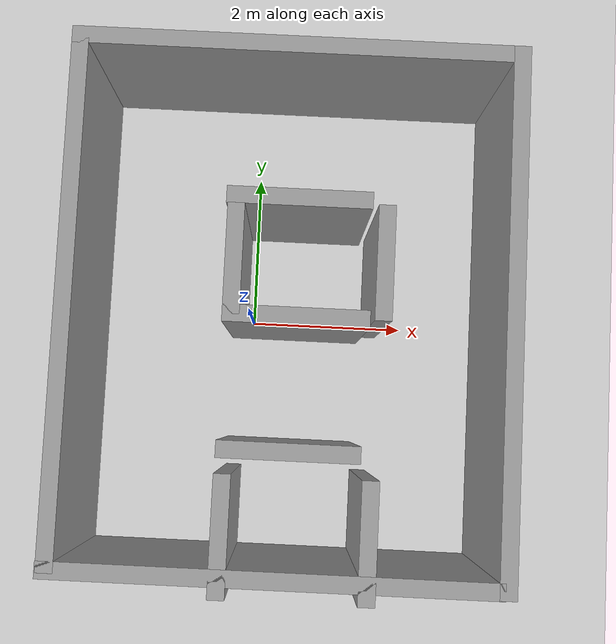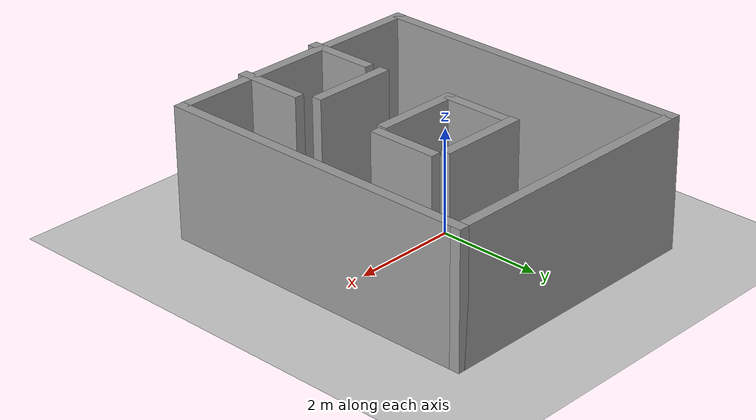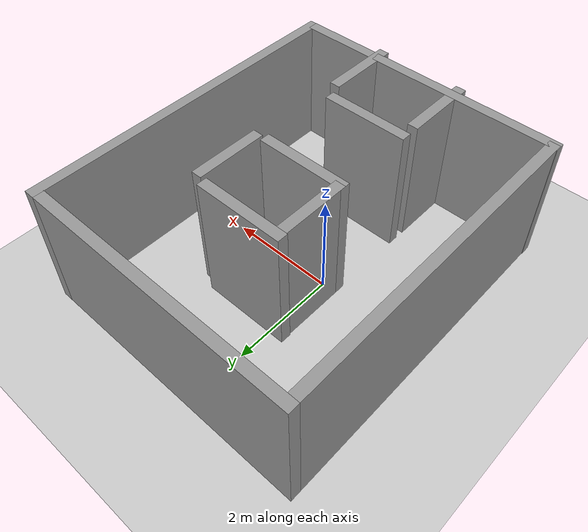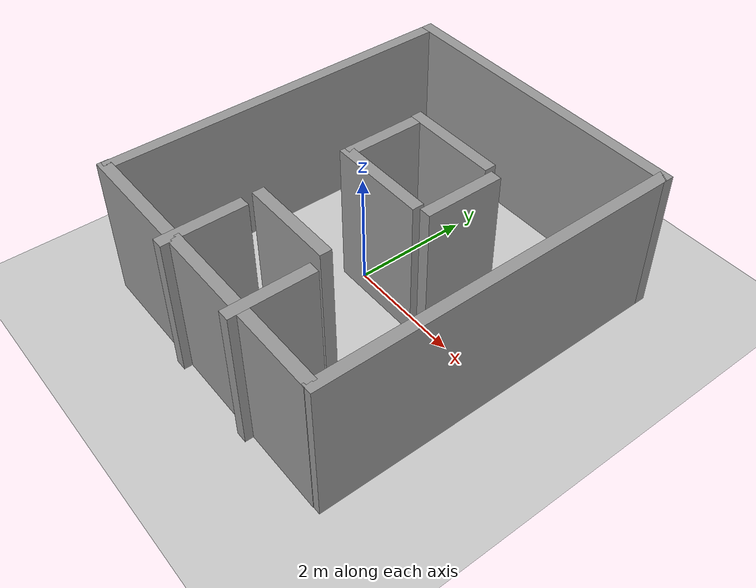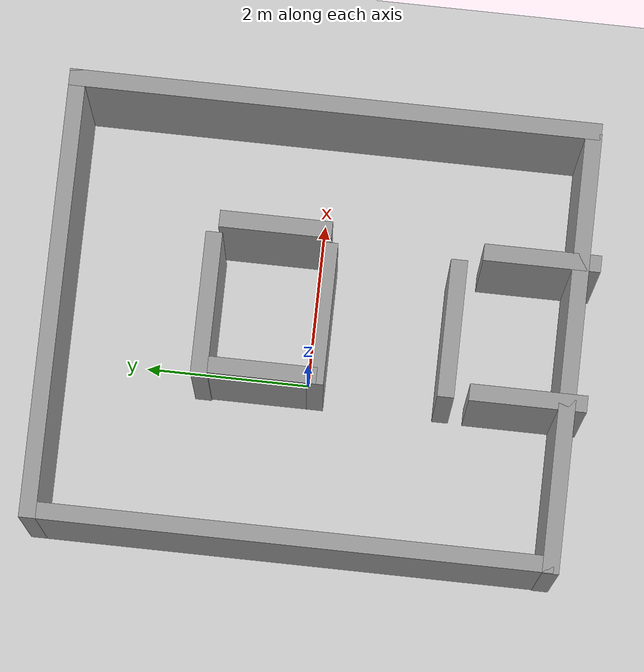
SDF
<sdf version="1.4">
 <world name="default">
  <include><uri>model://sun</uri></include>
  <include><uri>model://ground_plane</uri></include>
  <model name="real_world_map">
   <link name="Wall_1">
    <collision name="Wall_1_Collision">
     <geometry><box><size>5.26 0.2 2.5</size></box></geometry>
     <pose>0 0 1.25 0 -0 0</pose>
    </collision>
    <visual name="Wall_1_Visual">
     <pose>0 0 1.25 0 -0 0</pose>
     <geometry><box><size>5.26 0.2 2.5</size></box></geometry>
     <material>
      <script><uri>file://media/materials/scripts/gazebo.material</uri><name>Gazebo/Grey</name></script>
     </material>
    </visual>
    <velocity_decay><linear>0</linear><angular>0</angular></velocity_decay>
    <pose>0.412843 -3.08389 0 0 -0 0</pose>
   </link>
   <link name="Wall_10">
    <collision name="Wall_10_Collision">
     <geometry><box><size>1.39446 0.2 2.5</size></box></geometry>
     <pose>0 0 1.25 0 -0 0</pose>
    </collision>
    <visual name="Wall_10_Visual">
     <pose>0 0 1.25 0 -0 0</pose>
     <geometry><box><size>1.39446 0.2 2.5</size></box></geometry>
     <material>
      <script><uri>file://media/materials/scripts/gazebo.material</uri><name>Gazebo/Grey</name></script>
     </material>
    </visual>
    <velocity_decay><linear>0</linear><angular>0</angular></velocity_decay>
    <pose>-0.182814 -2.62455 0 0 0 -1.5708</pose>
   </link>
   <link name="Wall_12">
    <collision name="Wall_12_Collision">
     <geometry><box><size>1.28952 0.2 2.5</size></box></geometry>
     <pose>0 0 1.25 0 -0 0</pose>
    </collision>
    <visual name="Wall_12_Visual">
     <pose>0 0 1.25 0 -0 0</pose>
     <geometry><box><size>1.28952 0.2 2.5</size></box></geometry>
     <material>
      <script><uri>file://media/materials/scripts/gazebo.material</uri><name>Gazebo/Grey</name></script>
     </material>
    </visual>
    <velocity_decay><linear>0</linear><angular>0</angular></velocity_decay>
    <pose>-0.182814 0.526732 0 0 0 -1.5708</pose>
   </link>
   <link name="Wall_13">
    <collision name="Wall_13_Collision">
     <geometry><box><size>1.69693 0.2 2.5</size></box></geometry>
     <pose>0 0 1.25 0 -0 0</pose>
    </collision>
    <visual name="Wall_13_Visual">
     <pose>0 0 1.25 0 -0 0</pose>
     <geometry><box><size>1.69693 0.2 2.5</size></box></geometry>
     <material>
      <script><uri>file://media/materials/scripts/gazebo.material</uri><name>Gazebo/Grey</name></script>
     </material>
    </visual>
    <velocity_decay><linear>0</linear><angular>0</angular></velocity_decay>
    <pose>0.565553 -0.10697 0 0 -0 0</pose>
   </link>
   <link name="Wall_14">
    <collision name="Wall_14_Collision">
     <geometry><box><size>1.34199 0.2 2.5</size></box></geometry>
     <pose>0 0 1.25 0 -0 0</pose>
    </collision>
    <visual name="Wall_14_Visual">
     <pose>0 0 1.25 0 -0 0</pose>
     <geometry><box><size>1.34199 0.2 2.5</size></box></geometry>
     <material>
      <script><uri>file://media/materials/scripts/gazebo.material</uri><name>Gazebo/Grey</name></script>
     </material>
    </visual>
    <velocity_decay><linear>0</linear><angular>0</angular></velocity_decay>
    <pose>1.56402 0.552967 0 0 -0 1.5708</pose>
   </link>
   <link name="Wall_16">
    <collision name="Wall_16_Collision">
     <geometry><box><size>1.69693 0.2 2.5</size></box></geometry>
     <pose>0 0 1.25 0 -0 0</pose>
    </collision>
    <visual name="Wall_16_Visual">
     <pose>0 0 1.25 0 -0 0</pose>
     <geometry><box><size>1.69693 0.2 2.5</size></box></geometry>
     <material>
      <script><uri>file://media/materials/scripts/gazebo.material</uri><name>Gazebo/Grey</name></script>
     </material>
    </visual>
    <velocity_decay><linear>0</linear><angular>0</angular></velocity_decay>
    <pose>0.548063 1.26645 0 0 -0 0</pose>
   </link>
   <link name="Wall_3">
    <collision name="Wall_3_Collision">
     <geometry><box><size>6.36027 0.2 2.5</size></box></geometry>
     <pose>0 0 1.25 0 -0 0</pose>
    </collision>
    <visual name="Wall_3_Visual">
     <pose>0 0 1.25 0 -0 0</pose>
     <geometry><box><size>6.36027 0.2 2.5</size></box></geometry>
     <material>
      <script><uri>file://media/materials/scripts/gazebo.material</uri><name>Gazebo/Grey</name></script>
     </material>
    </visual>
    <velocity_decay><linear>0</linear><angular>0</angular></velocity_decay>
    <pose>3.07226 0.002969 0 0 -0 1.5708</pose>
   </link>
   <link name="Wall_4">
    <collision name="Wall_4_Collision">
     <geometry><box><size>5.38138 0.2 2.5</size></box></geometry>
     <pose>0 0 1.25 0 -0 0</pose>
    </collision>
    <visual name="Wall_4_Visual">
     <pose>0 0 1.25 0 -0 0</pose>
     <geometry><box><size>5.38138 0.2 2.5</size></box></geometry>
     <material>
      <script><uri>file://media/materials/scripts/gazebo.material</uri><name>Gazebo/Grey</name></script>
     </material>
    </visual>
    <velocity_decay><linear>0</linear><angular>0</angular></velocity_decay>
    <pose>0.481564 3.08311 0 0 -0 3.14159</pose>
   </link>
   <link name="Wall_5">
    <collision name="Wall_5_Collision">
     <geometry><box><size>6.29909 0.2 2.5</size></box></geometry>
     <pose>0 0 1.25 0 -0 0</pose>
    </collision>
    <visual name="Wall_5_Visual">
     <pose>0 0 1.25 0 -0 0</pose>
     <geometry><box><size>6.29909 0.2 2.5</size></box></geometry>
     <material>
      <script><uri>file://media/materials/scripts/gazebo.material</uri><name>Gazebo/Grey</name></script>
     </material>
    </visual>
    <velocity_decay><linear>0</linear><angular>0</angular></velocity_decay>
    <pose>-2.10913 0.033559 0 0 0 -1.5708</pose>
   </link>
   <link name="Wall_8">
    <collision name="Wall_8_Collision">
     <geometry><box><size>1.39446 0.2 2.5</size></box></geometry>
     <pose>0 0 1.25 0 -0 0</pose>
    </collision>
    <visual name="Wall_8_Visual">
     <pose>0 0 1.25 0 -0 0</pose>
     <geometry><box><size>1.39446 0.2 2.5</size></box></geometry>
     <material>
      <script><uri>file://media/materials/scripts/gazebo.material</uri><name>Gazebo/Grey</name></script>
     </material>
    </visual>
    <velocity_decay><linear>0</linear><angular>0</angular></velocity_decay>
    <pose>1.494059 -2.62455 0 0 -0 1.5708</pose>
   </link>
   <link name="Wall_9">
    <collision name="Wall_9_Collision">
     <geometry><box><size>1.64446 0.2 2.5</size></box></geometry>
     <pose>0 0 1.25 0 -0 0</pose>
    </collision>
    <visual name="Wall_9_Visual">
     <pose>0 0 1.25 0 -0 0</pose>
     <geometry><box><size>1.64446 0.2 2.5</size></box></geometry>
     <material>
      <script><uri>file://media/materials/scripts/gazebo.material</uri><name>Gazebo/Grey</name></script>
     </material>
    </visual>
    <velocity_decay><linear>0</linear><angular>0</angular></velocity_decay>
    <pose>0.548063 -1.65231 0 0 -0 3.14159</pose>
   </link>
   <static>1</static>
  </model>
  <physics type="ode">
   <max_step_size>0.001</max_step_size>
   <real_time_factor>1</real_time_factor>
   <real_time_update_rate>1000</real_time_update_rate>
   <gravity>0 0 -9.8</gravity>
  </physics>
  <scene><ambient>0.4 0.4 0.4 1</ambient><background>0.7 0.7 0.7 1</background><shadows>1</shadows></scene>
  <spherical_coordinates>
   <surface_model>EARTH_WGS84</surface_model>
   <latitude_deg>0</latitude_deg>
   <longitude_deg>0</longitude_deg>
   <elevation>0</elevation>
   <heading_deg>0</heading_deg>
  </spherical_coordinates>
 </world>
</sdf>
